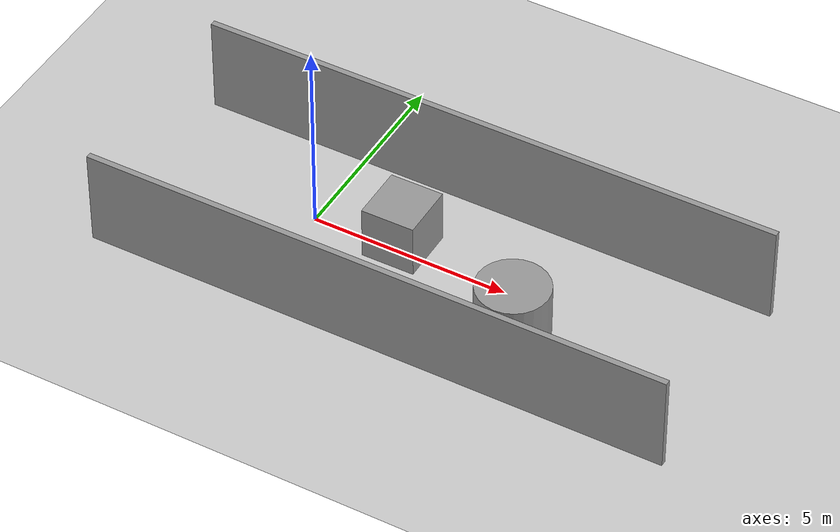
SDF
<sdf version="1.6">
 <world name="default">
  <light name="sun" type="directional">
   <pose>0 0 10 0 -0 0</pose>
   <diffuse>0.8 0.8 0.8 1</diffuse>
   <specular>0.2 0.2 0.2 1</specular>
   <attenuation>
    <range>1000</range>
    <constant>0.9</constant>
    <linear>0.01</linear>
    <quadratic>0.001</quadratic>
   </attenuation>
   <direction>-0.5 0.1 -0.9</direction>
  </light>
  <model name="ground_plane">
   <static>1</static>
   <link name="link">
    <collision name="collision">
     <geometry><plane><normal>0 0 1</normal><size>100 100</size></plane></geometry>
     <surface><friction><ode><mu>100</mu><mu2>50</mu2></ode></friction></surface>
    </collision>
    <visual name="visual">
     <cast_shadows>0</cast_shadows>
     <geometry><plane><normal>0 0 1</normal><size>100 100</size></plane></geometry>
     <material>
      <script><uri>file://media/materials/scripts/gazebo.material</uri><name>Gazebo/Grey</name></script>
     </material>
    </visual>
   </link>
  </model>
  <gravity>0 0 -9.8</gravity>
  <magnetic_field>6e-06 2.3e-05 -4.2e-05</magnetic_field>
  <atmosphere type="adiabatic"/>
  <physics name="default_physics" default="0" type="ode">
   <max_step_size>0.001</max_step_size>
   <real_time_factor>1</real_time_factor>
   <real_time_update_rate>1000</real_time_update_rate>
  </physics>
  <scene><ambient>0.4 0.4 0.4 1</ambient><background>0.7 0.7 0.7 1</background><shadows>1</shadows></scene>
  <audio><device>default</device></audio>
  <spherical_coordinates>
   <surface_model>EARTH_WGS84</surface_model>
   <latitude_deg>0</latitude_deg>
   <longitude_deg>0</longitude_deg>
   <elevation>0</elevation>
   <heading_deg>0</heading_deg>
  </spherical_coordinates>
  <model name="unit_box">
   <pose>2.21467 0.191505 0.690685 -7e-06 -0 0.005635</pose>
   <link name="link">
    <inertial>
     <mass>1</mass>
     <inertia>
      <ixx>0.166667</ixx>
      <ixy>0</ixy>
      <ixz>0</ixz>
      <iyy>0.166667</iyy>
      <iyz>0</iyz>
      <izz>0.166667</izz>
     </inertia>
    </inertial>
    <collision name="collision"><geometry><box><size>1.34295 1.3915 1.38138</size></box></geometry></collision>
    <visual name="visual">
     <geometry><box><size>1.34295 1.3915 1.38138</size></box></geometry>
     <material>
      <script><name>Gazebo/Grey</name><uri>file://media/materials/scripts/gazebo.material</uri></script>
     </material>
    </visual>
   </link>
  </model>
  <model name="unit_cylinder">
   <pose>5.73871 -0.979952 0.688272 0 -0 0</pose>
   <link name="link">
    <inertial>
     <mass>1</mass>
     <inertia><ixx>0.145833</ixx><ixy>0</ixy><ixz>0</ixz><iyy>0.145833</iyy><iyz>0</iyz><izz>0.125</izz></inertia>
    </inertial>
    <collision name="collision">
     <geometry><cylinder><radius>0.894515</radius><length>1.37654</length></cylinder></geometry>
    </collision>
    <visual name="visual">
     <geometry><cylinder><radius>0.894515</radius><length>1.37654</length></cylinder></geometry>
     <material>
      <script><name>Gazebo/Grey</name><uri>file://media/materials/scripts/gazebo.material</uri></script>
     </material>
    </visual>
   </link>
  </model>
  <model name="model_corridor00_0">
   <pose>3.21516 -0.316028 0 0 -0 0</pose>
   <link name="Wall_24">
    <collision name="Wall_24_Collision">
     <geometry><box><size>14.75 0.15 2.5</size></box></geometry>
     <pose>0 0 1.25 0 -0 0</pose>
    </collision>
    <visual name="Wall_24_Visual">
     <pose>0 0 1.25 0 -0 0</pose>
     <geometry><box><size>14.75 0.15 2.5</size></box></geometry>
     <material>
      <script><uri>file://media/materials/scripts/gazebo.material</uri><name>Gazebo/Grey</name></script>
      <ambient>1 1 1 1</ambient>
     </material>
     <meta><layer>0</layer></meta>
    </visual>
    <pose>-0 2.675 0 0 -0 0</pose>
   </link>
   <link name="Wall_28">
    <collision name="Wall_28_Collision">
     <geometry><box><size>14.75 0.15 2.5</size></box></geometry>
     <pose>0 0 1.25 0 -0 0</pose>
    </collision>
    <visual name="Wall_28_Visual">
     <pose>0 0 1.25 0 -0 0</pose>
     <geometry><box><size>14.75 0.15 2.5</size></box></geometry>
     <material>
      <script><uri>file://media/materials/scripts/gazebo.material</uri><name>Gazebo/Grey</name></script>
      <ambient>1 1 1 1</ambient>
     </material>
     <meta><layer>0</layer></meta>
    </visual>
    <pose>-0 -2.675 0 0 -0 3.14159</pose>
   </link>
   <static>1</static>
  </model>
 </world>
</sdf>
